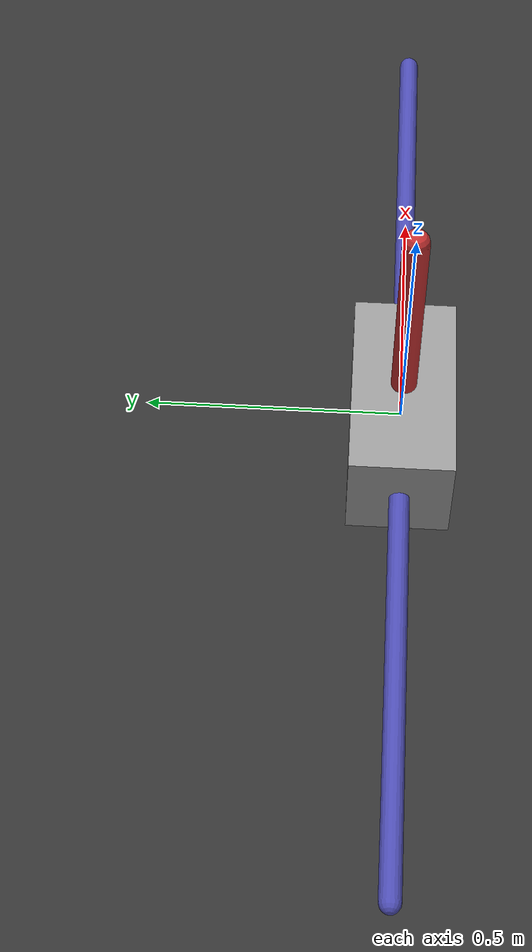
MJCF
<mujoco model="cartpole">
    <compiler inertiafromgeom="true"/>
    <default>
        <joint armature="0" damping="0" limited="false"/>
        <geom contype="0" friction="0.1 0.1 0.1" rgba="0.7 0.7 0 1"/>
        <tendon/>
        <motor ctrlrange="-100 100"/>
    </default>
    <option gravity="0 0 -9.81" integrator="RK4" timestep="0.01"/>
    <size nstack="3000"/>
    <worldbody>
        <light pos="0 0 5" dir="0 0 -1" diffuse="1 1 1"/>
        <geom name="floor" pos="0 0 -0.1" size="2 2 0.1" type="plane" rgba="0.2 0.2 0.2 1"/>
        <geom name="rail" type="capsule" size="0.02 1" pos="0 0 0" quat="0.707 0 0.707 0" rgba="0.3 0.3 0.7 1"/>
        <body name="cart" pos="0 0 0">
            <joint name="slider" type="slide" axis="1 0 0" damping="0.5"/>
            <geom name="cart" type="box" size="0.2 0.1 0.1" rgba="0.6 0.6 0.6 1"/>
            <body name="pole" pos="0 0 0">
                <joint name="hinge" type="hinge" axis="0 1 0" pos="0 0 0" damping="0.0"/>
                <geom name="cpole" type="capsule" fromto="0 0 0 0 0 0.5" size="0.025" rgba="0.8 0.2 0.2 1"/>
            </body>
        </body>
    </worldbody>
    <actuator>
        <motor name="slide" joint="slider" gear="1" ctrllimited="true" ctrlrange="-50 50"/>
    </actuator>
</mujoco>
